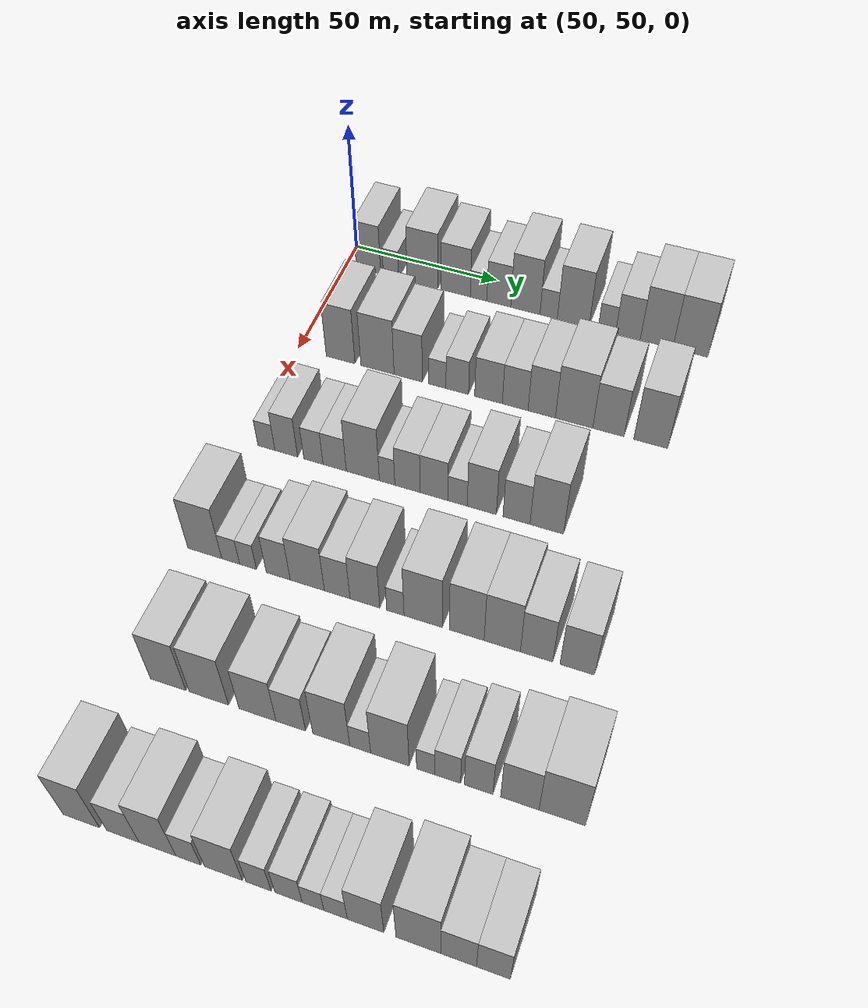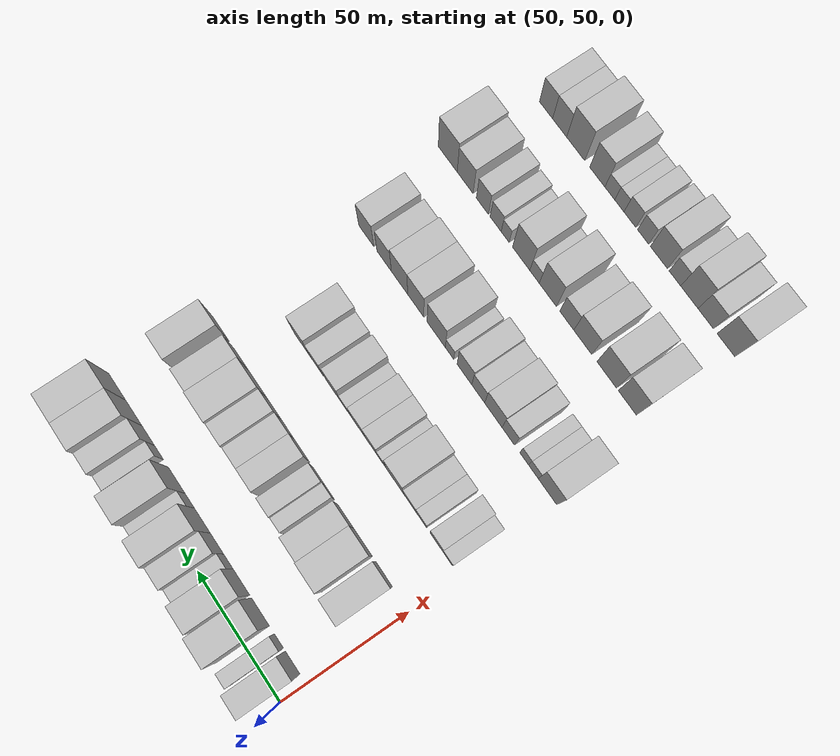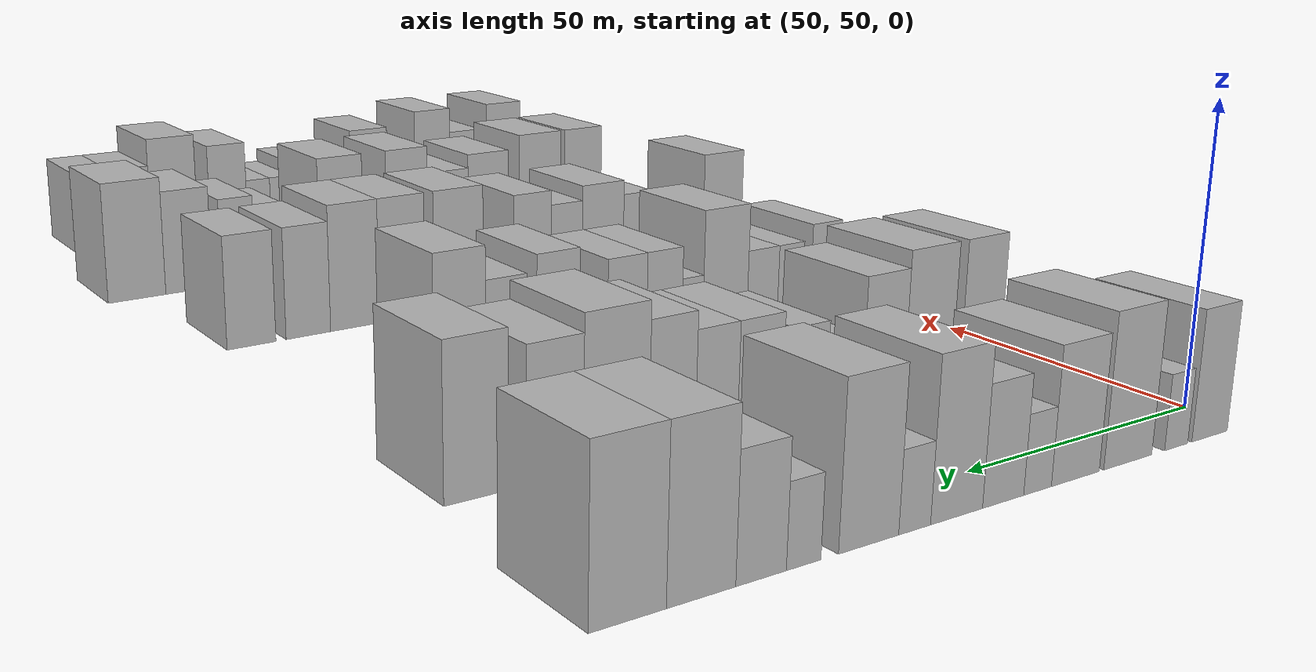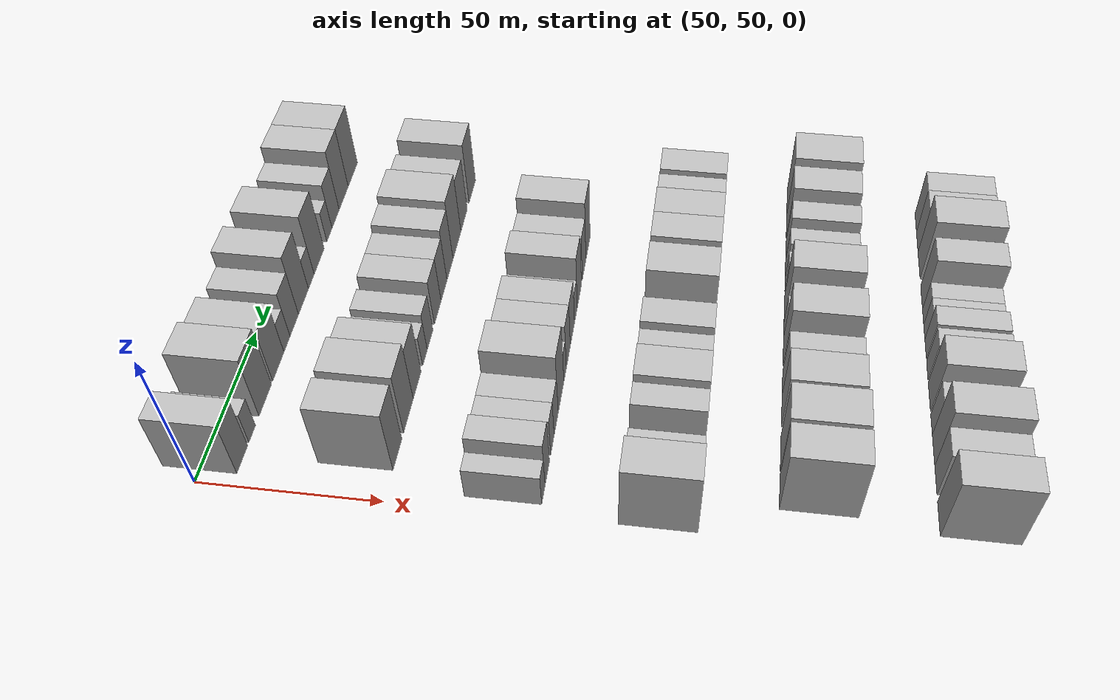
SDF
<sdf version="1.6">
 <world name="default">
  <model name="building_77">
   <static>1</static>
   <pose>50.0000 58.0316 0 0.000000 0.000000 0.000000</pose>
   <link name="link">
    <pose>0 0 10.50 0 0 0</pose>
    <collision name="collision"><geometry><box><size>20.0000 8.7165 21.0000</size></box></geometry></collision>
    <visual name="visual">
     <cast_shadows>0</cast_shadows>
     <geometry><box><size>20.0000 8.7165 21.0000</size></box></geometry>
     <material>
      <script>
       <uri>model://HANNAS_wall/materials/scripts</uri>
       <uri>model://HANNAS_wall/materials/textures</uri>
       <name>vrc/HANNAS_wall</name>
      </script>
     </material>
    </visual>
   </link>
  </model>
  <model name="building_78">
   <static>1</static>
   <pose>50.0000 66.1409 0 0.000000 0.000000 0.000000</pose>
   <link name="link">
    <pose>0 0 6.00 0 0 0</pose>
    <collision name="collision"><geometry><box><size>20.0000 5.5021 12.0000</size></box></geometry></collision>
    <visual name="visual">
     <cast_shadows>0</cast_shadows>
     <geometry><box><size>20.0000 5.5021 12.0000</size></box></geometry>
     <material>
      <script>
       <uri>model://HANNAS_wall/materials/scripts</uri>
       <uri>model://HANNAS_wall/materials/textures</uri>
       <name>vrc/HANNAS_wall</name>
      </script>
     </material>
    </visual>
   </link>
  </model>
  <model name="building_79">
   <static>1</static>
   <pose>50.0000 77.3324 0 0.000000 0.000000 0.000000</pose>
   <link name="link">
    <pose>0 0 12.00 0 0 0</pose>
    <collision name="collision"><geometry><box><size>20.0000 10.8809 24.0000</size></box></geometry></collision>
    <visual name="visual">
     <cast_shadows>0</cast_shadows>
     <geometry><box><size>20.0000 10.8809 24.0000</size></box></geometry>
     <material>
      <script>
       <uri>model://HANNAS_wall/materials/scripts</uri>
       <uri>model://HANNAS_wall/materials/textures</uri>
       <name>vrc/HANNAS_wall</name>
      </script>
     </material>
    </visual>
   </link>
  </model>
  <model name="building_80">
   <static>1</static>
   <pose>50.0000 88.9297 0 0.000000 0.000000 0.000000</pose>
   <link name="link">
    <pose>0 0 10.50 0 0 0</pose>
    <collision name="collision"><geometry><box><size>20.0000 10.3138 21.0000</size></box></geometry></collision>
    <visual name="visual">
     <cast_shadows>0</cast_shadows>
     <geometry><box><size>20.0000 10.3138 21.0000</size></box></geometry>
     <material>
      <script>
       <uri>model://HANNAS_wall/materials/scripts</uri>
       <uri>model://HANNAS_wall/materials/textures</uri>
       <name>vrc/HANNAS_wall</name>
      </script>
     </material>
    </visual>
   </link>
  </model>
  <model name="building_81">
   <static>1</static>
   <pose>50.0000 96.9542 0 0.000000 0.000000 0.000000</pose>
   <link name="link">
    <pose>0 0 6.00 0 0 0</pose>
    <collision name="collision"><geometry><box><size>20.0000 5.7352 12.0000</size></box></geometry></collision>
    <visual name="visual">
     <cast_shadows>0</cast_shadows>
     <geometry><box><size>20.0000 5.7352 12.0000</size></box></geometry>
     <material>
      <script>
       <uri>model://HANNAS_wall/materials/scripts</uri>
       <uri>model://HANNAS_wall/materials/textures</uri>
       <name>vrc/HANNAS_wall</name>
      </script>
     </material>
    </visual>
   </link>
  </model>
  <model name="building_82">
   <static>1</static>
   <pose>50.0000 103.9490 0 0.000000 0.000000 0.000000</pose>
   <link name="link">
    <pose>0 0 9.00 0 0 0</pose>
    <collision name="collision"><geometry><box><size>20.0000 8.2544 18.0000</size></box></geometry></collision>
    <visual name="visual">
     <cast_shadows>0</cast_shadows>
     <geometry><box><size>20.0000 8.2544 18.0000</size></box></geometry>
     <material>
      <script>
       <uri>model://HANNAS_wall/materials/scripts</uri>
       <uri>model://HANNAS_wall/materials/textures</uri>
       <name>vrc/HANNAS_wall</name>
      </script>
     </material>
    </visual>
   </link>
  </model>
  <model name="building_83">
   <static>1</static>
   <pose>50.0000 113.0676 0 0.000000 0.000000 0.000000</pose>
   <link name="link">
    <pose>0 0 12.00 0 0 0</pose>
    <collision name="collision"><geometry><box><size>20.0000 9.9829 24.0000</size></box></geometry></collision>
    <visual name="visual">
     <cast_shadows>0</cast_shadows>
     <geometry><box><size>20.0000 9.9829 24.0000</size></box></geometry>
     <material>
      <script>
       <uri>model://HANNAS_wall/materials/scripts</uri>
       <uri>model://HANNAS_wall/materials/textures</uri>
       <name>vrc/HANNAS_wall</name>
      </script>
     </material>
    </visual>
   </link>
  </model>
  <model name="building_84">
   <static>1</static>
   <pose>50.0000 121.0034 0 0.000000 0.000000 0.000000</pose>
   <link name="link">
    <pose>0 0 6.00 0 0 0</pose>
    <collision name="collision"><geometry><box><size>20.0000 5.8888 12.0000</size></box></geometry></collision>
    <visual name="visual">
     <cast_shadows>0</cast_shadows>
     <geometry><box><size>20.0000 5.8888 12.0000</size></box></geometry>
     <material>
      <script>
       <uri>model://HANNAS_wall/materials/scripts</uri>
       <uri>model://HANNAS_wall/materials/textures</uri>
       <name>vrc/HANNAS_wall</name>
      </script>
     </material>
    </visual>
   </link>
  </model>
  <model name="building_85">
   <static>1</static>
   <pose>50.0000 129.2816 0 0.000000 0.000000 0.000000</pose>
   <link name="link">
    <pose>0 0 12.00 0 0 0</pose>
    <collision name="collision"><geometry><box><size>20.0000 10.6676 24.0000</size></box></geometry></collision>
    <visual name="visual">
     <cast_shadows>0</cast_shadows>
     <geometry><box><size>20.0000 10.6676 24.0000</size></box></geometry>
     <material>
      <script>
       <uri>model://HANNAS_wall/materials/scripts</uri>
       <uri>model://HANNAS_wall/materials/textures</uri>
       <name>vrc/HANNAS_wall</name>
      </script>
     </material>
    </visual>
   </link>
  </model>
  <model name="building_86">
   <static>1</static>
   <pose>50.0000 140.5098 0 0.000000 0.000000 0.000000</pose>
   <link name="link">
    <pose>0 0 6.00 0 0 0</pose>
    <collision name="collision"><geometry><box><size>20.0000 5.7888 12.0000</size></box></geometry></collision>
    <visual name="visual">
     <cast_shadows>0</cast_shadows>
     <geometry><box><size>20.0000 5.7888 12.0000</size></box></geometry>
     <material>
      <script>
       <uri>model://HANNAS_wall/materials/scripts</uri>
       <uri>model://HANNAS_wall/materials/textures</uri>
       <name>vrc/HANNAS_wall</name>
      </script>
     </material>
    </visual>
   </link>
  </model>
  <model name="building_87">
   <static>1</static>
   <pose>50.0000 147.4850 0 0.000000 0.000000 0.000000</pose>
   <link name="link">
    <pose>0 0 9.00 0 0 0</pose>
    <collision name="collision"><geometry><box><size>20.0000 8.1616 18.0000</size></box></geometry></collision>
    <visual name="visual">
     <cast_shadows>0</cast_shadows>
     <geometry><box><size>20.0000 8.1616 18.0000</size></box></geometry>
     <material>
      <script>
       <uri>model://HANNAS_wall/materials/scripts</uri>
       <uri>model://HANNAS_wall/materials/textures</uri>
       <name>vrc/HANNAS_wall</name>
      </script>
     </material>
    </visual>
   </link>
  </model>
  <model name="building_88">
   <static>1</static>
   <pose>50.0000 156.8885 0 0.000000 0.000000 0.000000</pose>
   <link name="link">
    <pose>0 0 12.00 0 0 0</pose>
    <collision name="collision"><geometry><box><size>20.0000 10.6454 24.0000</size></box></geometry></collision>
    <visual name="visual">
     <cast_shadows>0</cast_shadows>
     <geometry><box><size>20.0000 10.6454 24.0000</size></box></geometry>
     <material>
      <script>
       <uri>model://HANNAS_wall/materials/scripts</uri>
       <uri>model://HANNAS_wall/materials/textures</uri>
       <name>vrc/HANNAS_wall</name>
      </script>
     </material>
    </visual>
   </link>
  </model>
  <model name="building_89">
   <static>1</static>
   <pose>50.0000 167.8699 0 0.000000 0.000000 0.000000</pose>
   <link name="link">
    <pose>0 0 12.00 0 0 0</pose>
    <collision name="collision"><geometry><box><size>20.0000 11.3176 24.0000</size></box></geometry></collision>
    <visual name="visual">
     <cast_shadows>0</cast_shadows>
     <geometry><box><size>20.0000 11.3176 24.0000</size></box></geometry>
     <material>
      <script>
       <uri>model://HANNAS_wall/materials/scripts</uri>
       <uri>model://HANNAS_wall/materials/textures</uri>
       <name>vrc/HANNAS_wall</name>
      </script>
     </material>
    </visual>
   </link>
  </model>
  <model name="building_209">
   <static>1</static>
   <pose>90.0000 64.3530 0 0.000000 0.000000 0.000000</pose>
   <link name="link">
    <pose>0 0 12.00 0 0 0</pose>
    <collision name="collision"><geometry><box><size>20.0000 9.8037 24.0000</size></box></geometry></collision>
    <visual name="visual">
     <cast_shadows>0</cast_shadows>
     <geometry><box><size>20.0000 9.8037 24.0000</size></box></geometry>
     <material>
      <script>
       <uri>model://HANNAS_wall/materials/scripts</uri>
       <uri>model://HANNAS_wall/materials/textures</uri>
       <name>vrc/HANNAS_wall</name>
      </script>
     </material>
    </visual>
   </link>
  </model>
  <model name="building_210">
   <static>1</static>
   <pose>90.0000 76.8482 0 0.000000 0.000000 0.000000</pose>
   <link name="link">
    <pose>0 0 12.00 0 0 0</pose>
    <collision name="collision"><geometry><box><size>20.0000 11.1867 24.0000</size></box></geometry></collision>
    <visual name="visual">
     <cast_shadows>0</cast_shadows>
     <geometry><box><size>20.0000 11.1867 24.0000</size></box></geometry>
     <material>
      <script>
       <uri>model://HANNAS_wall/materials/scripts</uri>
       <uri>model://HANNAS_wall/materials/textures</uri>
       <name>vrc/HANNAS_wall</name>
      </script>
     </material>
    </visual>
   </link>
  </model>
  <model name="building_211">
   <static>1</static>
   <pose>90.0000 87.1653 0 0.000000 0.000000 0.000000</pose>
   <link name="link">
    <pose>0 0 10.50 0 0 0</pose>
    <collision name="collision"><geometry><box><size>20.0000 9.4476 21.0000</size></box></geometry></collision>
    <visual name="visual">
     <cast_shadows>0</cast_shadows>
     <geometry><box><size>20.0000 9.4476 21.0000</size></box></geometry>
     <material>
      <script>
       <uri>model://HANNAS_wall/materials/scripts</uri>
       <uri>model://HANNAS_wall/materials/textures</uri>
       <name>vrc/HANNAS_wall</name>
      </script>
     </material>
    </visual>
   </link>
  </model>
  <model name="building_212">
   <static>1</static>
   <pose>90.0000 96.7720 0 0.000000 0.000000 0.000000</pose>
   <link name="link">
    <pose>0 0 6.00 0 0 0</pose>
    <collision name="collision"><geometry><box><size>20.0000 5.7657 12.0000</size></box></geometry></collision>
    <visual name="visual">
     <cast_shadows>0</cast_shadows>
     <geometry><box><size>20.0000 5.7657 12.0000</size></box></geometry>
     <material>
      <script>
       <uri>model://HANNAS_wall/materials/scripts</uri>
       <uri>model://HANNAS_wall/materials/textures</uri>
       <name>vrc/HANNAS_wall</name>
      </script>
     </material>
    </visual>
   </link>
  </model>
  <model name="building_213">
   <static>1</static>
   <pose>90.0000 103.3609 0 0.000000 0.000000 0.000000</pose>
   <link name="link">
    <pose>0 0 7.50 0 0 0</pose>
    <collision name="collision"><geometry><box><size>20.0000 7.4121 15.0000</size></box></geometry></collision>
    <visual name="visual">
     <cast_shadows>0</cast_shadows>
     <geometry><box><size>20.0000 7.4121 15.0000</size></box></geometry>
     <material>
      <script>
       <uri>model://HANNAS_wall/materials/scripts</uri>
       <uri>model://HANNAS_wall/materials/textures</uri>
       <name>vrc/HANNAS_wall</name>
      </script>
     </material>
    </visual>
   </link>
  </model>
  <model name="building_214">
   <static>1</static>
   <pose>90.0000 113.5467 0 0.000000 0.000000 0.000000</pose>
   <link name="link">
    <pose>0 0 9.00 0 0 0</pose>
    <collision name="collision"><geometry><box><size>20.0000 8.9595 18.0000</size></box></geometry></collision>
    <visual name="visual">
     <cast_shadows>0</cast_shadows>
     <geometry><box><size>20.0000 8.9595 18.0000</size></box></geometry>
     <material>
      <script>
       <uri>model://HANNAS_wall/materials/scripts</uri>
       <uri>model://HANNAS_wall/materials/textures</uri>
       <name>vrc/HANNAS_wall</name>
      </script>
     </material>
    </visual>
   </link>
  </model>
  <model name="building_215">
   <static>1</static>
   <pose>90.0000 122.1614 0 0.000000 0.000000 0.000000</pose>
   <link name="link">
    <pose>0 0 9.00 0 0 0</pose>
    <collision name="collision"><geometry><box><size>20.0000 8.2699 18.0000</size></box></geometry></collision>
    <visual name="visual">
     <cast_shadows>0</cast_shadows>
     <geometry><box><size>20.0000 8.2699 18.0000</size></box></geometry>
     <material>
      <script>
       <uri>model://HANNAS_wall/materials/scripts</uri>
       <uri>model://HANNAS_wall/materials/textures</uri>
       <name>vrc/HANNAS_wall</name>
      </script>
     </material>
    </visual>
   </link>
  </model>
  <model name="building_216">
   <static>1</static>
   <pose>90.0000 130.6529 0 0.000000 0.000000 0.000000</pose>
   <link name="link">
    <pose>0 0 10.50 0 0 0</pose>
    <collision name="collision"><geometry><box><size>20.0000 8.7132 21.0000</size></box></geometry></collision>
    <visual name="visual">
     <cast_shadows>0</cast_shadows>
     <geometry><box><size>20.0000 8.7132 21.0000</size></box></geometry>
     <material>
      <script>
       <uri>model://HANNAS_wall/materials/scripts</uri>
       <uri>model://HANNAS_wall/materials/textures</uri>
       <name>vrc/HANNAS_wall</name>
      </script>
     </material>
    </visual>
   </link>
  </model>
  <model name="building_217">
   <static>1</static>
   <pose>90.0000 140.8975 0 0.000000 0.000000 0.000000</pose>
   <link name="link">
    <pose>0 0 12.00 0 0 0</pose>
    <collision name="collision"><geometry><box><size>20.0000 11.7761 24.0000</size></box></geometry></collision>
    <visual name="visual">
     <cast_shadows>0</cast_shadows>
     <geometry><box><size>20.0000 11.7761 24.0000</size></box></geometry>
     <material>
      <script>
       <uri>model://HANNAS_wall/materials/scripts</uri>
       <uri>model://HANNAS_wall/materials/textures</uri>
       <name>vrc/HANNAS_wall</name>
      </script>
     </material>
    </visual>
   </link>
  </model>
  <model name="building_218">
   <static>1</static>
   <pose>90.0000 151.6613 0 0.000000 0.000000 0.000000</pose>
   <link name="link">
    <pose>0 0 10.50 0 0 0</pose>
    <collision name="collision"><geometry><box><size>20.0000 9.7514 21.0000</size></box></geometry></collision>
    <visual name="visual">
     <cast_shadows>0</cast_shadows>
     <geometry><box><size>20.0000 9.7514 21.0000</size></box></geometry>
     <material>
      <script>
       <uri>model://HANNAS_wall/materials/scripts</uri>
       <uri>model://HANNAS_wall/materials/textures</uri>
       <name>vrc/HANNAS_wall</name>
      </script>
     </material>
    </visual>
   </link>
  </model>
  <model name="building_219">
   <static>1</static>
   <pose>90.0000 164.7518 0 0.000000 0.000000 0.000000</pose>
   <link name="link">
    <pose>0 0 12.00 0 0 0</pose>
    <collision name="collision"><geometry><box><size>20.0000 10.4296 24.0000</size></box></geometry></collision>
    <visual name="visual">
     <cast_shadows>0</cast_shadows>
     <geometry><box><size>20.0000 10.4296 24.0000</size></box></geometry>
     <material>
      <script>
       <uri>model://HANNAS_wall/materials/scripts</uri>
       <uri>model://HANNAS_wall/materials/textures</uri>
       <name>vrc/HANNAS_wall</name>
      </script>
     </material>
    </visual>
   </link>
  </model>
  <model name="building_356">
   <static>1</static>
   <pose>130.0000 56.7798 0 0.000000 0.000000 0.000000</pose>
   <link name="link">
    <pose>0 0 6.00 0 0 0</pose>
    <collision name="collision"><geometry><box><size>20.0000 5.5539 12.0000</size></box></geometry></collision>
    <visual name="visual">
     <cast_shadows>0</cast_shadows>
     <geometry><box><size>20.0000 5.5539 12.0000</size></box></geometry>
     <material>
      <script>
       <uri>model://HANNAS_wall/materials/scripts</uri>
       <uri>model://HANNAS_wall/materials/textures</uri>
       <name>vrc/HANNAS_wall</name>
      </script>
     </material>
    </visual>
   </link>
  </model>
  <model name="building_357">
   <static>1</static>
   <pose>130.0000 63.2614 0 0.000000 0.000000 0.000000</pose>
   <link name="link">
    <pose>0 0 9.00 0 0 0</pose>
    <collision name="collision"><geometry><box><size>20.0000 7.4094 18.0000</size></box></geometry></collision>
    <visual name="visual">
     <cast_shadows>0</cast_shadows>
     <geometry><box><size>20.0000 7.4094 18.0000</size></box></geometry>
     <material>
      <script>
       <uri>model://HANNAS_wall/materials/scripts</uri>
       <uri>model://HANNAS_wall/materials/textures</uri>
       <name>vrc/HANNAS_wall</name>
      </script>
     </material>
    </visual>
   </link>
  </model>
  <model name="building_358">
   <static>1</static>
   <pose>130.0000 72.0494 0 0.000000 0.000000 0.000000</pose>
   <link name="link">
    <pose>0 0 7.50 0 0 0</pose>
    <collision name="collision"><geometry><box><size>20.0000 6.1666 15.0000</size></box></geometry></collision>
    <visual name="visual">
     <cast_shadows>0</cast_shadows>
     <geometry><box><size>20.0000 6.1666 15.0000</size></box></geometry>
     <material>
      <script>
       <uri>model://HANNAS_wall/materials/scripts</uri>
       <uri>model://HANNAS_wall/materials/textures</uri>
       <name>vrc/HANNAS_wall</name>
      </script>
     </material>
    </visual>
   </link>
  </model>
  <model name="building_359">
   <static>1</static>
   <pose>130.0000 78.8583 0 0.000000 0.000000 0.000000</pose>
   <link name="link">
    <pose>0 0 7.50 0 0 0</pose>
    <collision name="collision"><geometry><box><size>20.0000 7.4513 15.0000</size></box></geometry></collision>
    <visual name="visual">
     <cast_shadows>0</cast_shadows>
     <geometry><box><size>20.0000 7.4513 15.0000</size></box></geometry>
     <material>
      <script>
       <uri>model://HANNAS_wall/materials/scripts</uri>
       <uri>model://HANNAS_wall/materials/textures</uri>
       <name>vrc/HANNAS_wall</name>
      </script>
     </material>
    </visual>
   </link>
  </model>
  <model name="building_360">
   <static>1</static>
   <pose>130.0000 87.8145 0 0.000000 0.000000 0.000000</pose>
   <link name="link">
    <pose>0 0 12.00 0 0 0</pose>
    <collision name="collision"><geometry><box><size>20.0000 10.4611 24.0000</size></box></geometry></collision>
    <visual name="visual">
     <cast_shadows>0</cast_shadows>
     <geometry><box><size>20.0000 10.4611 24.0000</size></box></geometry>
     <material>
      <script>
       <uri>model://HANNAS_wall/materials/scripts</uri>
       <uri>model://HANNAS_wall/materials/textures</uri>
       <name>vrc/HANNAS_wall</name>
      </script>
     </material>
    </visual>
   </link>
  </model>
  <model name="building_361">
   <static>1</static>
   <pose>130.0000 95.4640 0 0.000000 0.000000 0.000000</pose>
   <link name="link">
    <pose>0 0 6.00 0 0 0</pose>
    <collision name="collision"><geometry><box><size>20.0000 4.8380 12.0000</size></box></geometry></collision>
    <visual name="visual">
     <cast_shadows>0</cast_shadows>
     <geometry><box><size>20.0000 4.8380 12.0000</size></box></geometry>
     <material>
      <script>
       <uri>model://HANNAS_wall/materials/scripts</uri>
       <uri>model://HANNAS_wall/materials/textures</uri>
       <name>vrc/HANNAS_wall</name>
      </script>
     </material>
    </visual>
   </link>
  </model>
  <model name="building_362">
   <static>1</static>
   <pose>130.0000 101.8373 0 0.000000 0.000000 0.000000</pose>
   <link name="link">
    <pose>0 0 9.00 0 0 0</pose>
    <collision name="collision"><geometry><box><size>20.0000 7.9087 18.0000</size></box></geometry></collision>
    <visual name="visual">
     <cast_shadows>0</cast_shadows>
     <geometry><box><size>20.0000 7.9087 18.0000</size></box></geometry>
     <material>
      <script>
       <uri>model://HANNAS_wall/materials/scripts</uri>
       <uri>model://HANNAS_wall/materials/textures</uri>
       <name>vrc/HANNAS_wall</name>
      </script>
     </material>
    </visual>
   </link>
  </model>
  <model name="building_363">
   <static>1</static>
   <pose>130.0000 110.0591 0 0.000000 0.000000 0.000000</pose>
   <link name="link">
    <pose>0 0 9.00 0 0 0</pose>
    <collision name="collision"><geometry><box><size>20.0000 8.5350 18.0000</size></box></geometry></collision>
    <visual name="visual">
     <cast_shadows>0</cast_shadows>
     <geometry><box><size>20.0000 8.5350 18.0000</size></box></geometry>
     <material>
      <script>
       <uri>model://HANNAS_wall/materials/scripts</uri>
       <uri>model://HANNAS_wall/materials/textures</uri>
       <name>vrc/HANNAS_wall</name>
      </script>
     </material>
    </visual>
   </link>
  </model>
  <model name="building_364">
   <static>1</static>
   <pose>130.0000 117.2825 0 0.000000 0.000000 0.000000</pose>
   <link name="link">
    <pose>0 0 6.00 0 0 0</pose>
    <collision name="collision"><geometry><box><size>20.0000 5.9117 12.0000</size></box></geometry></collision>
    <visual name="visual">
     <cast_shadows>0</cast_shadows>
     <geometry><box><size>20.0000 5.9117 12.0000</size></box></geometry>
     <material>
      <script>
       <uri>model://HANNAS_wall/materials/scripts</uri>
       <uri>model://HANNAS_wall/materials/textures</uri>
       <name>vrc/HANNAS_wall</name>
      </script>
     </material>
    </visual>
   </link>
  </model>
  <model name="building_365">
   <static>1</static>
   <pose>130.0000 124.6548 0 0.000000 0.000000 0.000000</pose>
   <link name="link">
    <pose>0 0 10.50 0 0 0</pose>
    <collision name="collision"><geometry><box><size>20.0000 8.8328 21.0000</size></box></geometry></collision>
    <visual name="visual">
     <cast_shadows>0</cast_shadows>
     <geometry><box><size>20.0000 8.8328 21.0000</size></box></geometry>
     <material>
      <script>
       <uri>model://HANNAS_wall/materials/scripts</uri>
       <uri>model://HANNAS_wall/materials/textures</uri>
       <name>vrc/HANNAS_wall</name>
      </script>
     </material>
    </visual>
   </link>
  </model>
  <model name="building_366">
   <static>1</static>
   <pose>130.0000 135.1244 0 0.000000 0.000000 0.000000</pose>
   <link name="link">
    <pose>0 0 9.00 0 0 0</pose>
    <collision name="collision"><geometry><box><size>20.0000 8.1064 18.0000</size></box></geometry></collision>
    <visual name="visual">
     <cast_shadows>0</cast_shadows>
     <geometry><box><size>20.0000 8.1064 18.0000</size></box></geometry>
     <material>
      <script>
       <uri>model://HANNAS_wall/materials/scripts</uri>
       <uri>model://HANNAS_wall/materials/textures</uri>
       <name>vrc/HANNAS_wall</name>
      </script>
     </material>
    </visual>
   </link>
  </model>
  <model name="building_367">
   <static>1</static>
   <pose>130.0000 144.1565 0 0.000000 0.000000 0.000000</pose>
   <link name="link">
    <pose>0 0 12.00 0 0 0</pose>
    <collision name="collision"><geometry><box><size>20.0000 9.9578 24.0000</size></box></geometry></collision>
    <visual name="visual">
     <cast_shadows>0</cast_shadows>
     <geometry><box><size>20.0000 9.9578 24.0000</size></box></geometry>
     <material>
      <script>
       <uri>model://HANNAS_wall/materials/scripts</uri>
       <uri>model://HANNAS_wall/materials/textures</uri>
       <name>vrc/HANNAS_wall</name>
      </script>
     </material>
    </visual>
   </link>
  </model>
  <model name="building_487">
   <static>1</static>
   <pose>170.0000 55.9464 0 0.000000 0.000000 0.000000</pose>
   <link name="link">
    <pose>0 0 12.00 0 0 0</pose>
    <collision name="collision"><geometry><box><size>20.0000 10.5192 24.0000</size></box></geometry></collision>
    <visual name="visual">
     <cast_shadows>0</cast_shadows>
     <geometry><box><size>20.0000 10.5192 24.0000</size></box></geometry>
     <material>
      <script>
       <uri>model://HANNAS_wall/materials/scripts</uri>
       <uri>model://HANNAS_wall/materials/textures</uri>
       <name>vrc/HANNAS_wall</name>
      </script>
     </material>
    </visual>
   </link>
  </model>
  <model name="building_488">
   <static>1</static>
   <pose>170.0000 63.9727 0 0.000000 0.000000 0.000000</pose>
   <link name="link">
    <pose>0 0 6.00 0 0 0</pose>
    <collision name="collision"><geometry><box><size>20.0000 5.5335 12.0000</size></box></geometry></collision>
    <visual name="visual">
     <cast_shadows>0</cast_shadows>
     <geometry><box><size>20.0000 5.5335 12.0000</size></box></geometry>
     <material>
      <script>
       <uri>model://HANNAS_wall/materials/scripts</uri>
       <uri>model://HANNAS_wall/materials/textures</uri>
       <name>vrc/HANNAS_wall</name>
      </script>
     </material>
    </visual>
   </link>
  </model>
  <model name="building_489">
   <static>1</static>
   <pose>170.0000 69.2903 0 0.000000 0.000000 0.000000</pose>
   <link name="link">
    <pose>0 0 6.00 0 0 0</pose>
    <collision name="collision"><geometry><box><size>20.0000 5.1016 12.0000</size></box></geometry></collision>
    <visual name="visual">
     <cast_shadows>0</cast_shadows>
     <geometry><box><size>20.0000 5.1016 12.0000</size></box></geometry>
     <material>
      <script>
       <uri>model://HANNAS_wall/materials/scripts</uri>
       <uri>model://HANNAS_wall/materials/textures</uri>
       <name>vrc/HANNAS_wall</name>
      </script>
     </material>
    </visual>
   </link>
  </model>
  <model name="building_490">
   <static>1</static>
   <pose>170.0000 78.4756 0 0.000000 0.000000 0.000000</pose>
   <link name="link">
    <pose>0 0 9.00 0 0 0</pose>
    <collision name="collision"><geometry><box><size>20.0000 7.2692 18.0000</size></box></geometry></collision>
    <visual name="visual">
     <cast_shadows>0</cast_shadows>
     <geometry><box><size>20.0000 7.2692 18.0000</size></box></geometry>
     <material>
      <script>
       <uri>model://HANNAS_wall/materials/scripts</uri>
       <uri>model://HANNAS_wall/materials/textures</uri>
       <name>vrc/HANNAS_wall</name>
      </script>
     </material>
    </visual>
   </link>
  </model>
  <model name="building_491">
   <static>1</static>
   <pose>170.0000 87.2288 0 0.000000 0.000000 0.000000</pose>
   <link name="link">
    <pose>0 0 10.50 0 0 0</pose>
    <collision name="collision"><geometry><box><size>20.0000 10.2372 21.0000</size></box></geometry></collision>
    <visual name="visual">
     <cast_shadows>0</cast_shadows>
     <geometry><box><size>20.0000 10.2372 21.0000</size></box></geometry>
     <material>
      <script>
       <uri>model://HANNAS_wall/materials/scripts</uri>
       <uri>model://HANNAS_wall/materials/textures</uri>
       <name>vrc/HANNAS_wall</name>
      </script>
     </material>
    </visual>
   </link>
  </model>
  <model name="building_492">
   <static>1</static>
   <pose>170.0000 96.1492 0 0.000000 0.000000 0.000000</pose>
   <link name="link">
    <pose>0 0 9.00 0 0 0</pose>
    <collision name="collision"><geometry><box><size>20.0000 7.6035 18.0000</size></box></geometry></collision>
    <visual name="visual">
     <cast_shadows>0</cast_shadows>
     <geometry><box><size>20.0000 7.6035 18.0000</size></box></geometry>
     <material>
      <script>
       <uri>model://HANNAS_wall/materials/scripts</uri>
       <uri>model://HANNAS_wall/materials/textures</uri>
       <name>vrc/HANNAS_wall</name>
      </script>
     </material>
    </visual>
   </link>
  </model>
  <model name="building_493">
   <static>1</static>
   <pose>170.0000 104.3206 0 0.000000 0.000000 0.000000</pose>
   <link name="link">
    <pose>0 0 10.50 0 0 0</pose>
    <collision name="collision"><geometry><box><size>20.0000 8.7393 21.0000</size></box></geometry></collision>
    <visual name="visual">
     <cast_shadows>0</cast_shadows>
     <geometry><box><size>20.0000 8.7393 21.0000</size></box></geometry>
     <material>
      <script>
       <uri>model://HANNAS_wall/materials/scripts</uri>
       <uri>model://HANNAS_wall/materials/textures</uri>
       <name>vrc/HANNAS_wall</name>
      </script>
     </material>
    </visual>
   </link>
  </model>
  <model name="building_494">
   <static>1</static>
   <pose>170.0000 113.2113 0 0.000000 0.000000 0.000000</pose>
   <link name="link">
    <pose>0 0 6.00 0 0 0</pose>
    <collision name="collision"><geometry><box><size>20.0000 5.0421 12.0000</size></box></geometry></collision>
    <visual name="visual">
     <cast_shadows>0</cast_shadows>
     <geometry><box><size>20.0000 5.0421 12.0000</size></box></geometry>
     <material>
      <script>
       <uri>model://HANNAS_wall/materials/scripts</uri>
       <uri>model://HANNAS_wall/materials/textures</uri>
       <name>vrc/HANNAS_wall</name>
      </script>
     </material>
    </visual>
   </link>
  </model>
  <model name="building_495">
   <static>1</static>
   <pose>170.0000 121.2402 0 0.000000 0.000000 0.000000</pose>
   <link name="link">
    <pose>0 0 12.00 0 0 0</pose>
    <collision name="collision"><geometry><box><size>20.0000 11.0156 24.0000</size></box></geometry></collision>
    <visual name="visual">
     <cast_shadows>0</cast_shadows>
     <geometry><box><size>20.0000 11.0156 24.0000</size></box></geometry>
     <material>
      <script>
       <uri>model://HANNAS_wall/materials/scripts</uri>
       <uri>model://HANNAS_wall/materials/textures</uri>
       <name>vrc/HANNAS_wall</name>
      </script>
     </material>
    </visual>
   </link>
  </model>
  <model name="building_496">
   <static>1</static>
   <pose>170.0000 133.6766 0 0.000000 0.000000 0.000000</pose>
   <link name="link">
    <pose>0 0 12.00 0 0 0</pose>
    <collision name="collision"><geometry><box><size>20.0000 9.8572 24.0000</size></box></geometry></collision>
    <visual name="visual">
     <cast_shadows>0</cast_shadows>
     <geometry><box><size>20.0000 9.8572 24.0000</size></box></geometry>
     <material>
      <script>
       <uri>model://HANNAS_wall/materials/scripts</uri>
       <uri>model://HANNAS_wall/materials/textures</uri>
       <name>vrc/HANNAS_wall</name>
      </script>
     </material>
    </visual>
   </link>
  </model>
  <model name="building_497">
   <static>1</static>
   <pose>170.0000 143.6765 0 0.000000 0.000000 0.000000</pose>
   <link name="link">
    <pose>0 0 12.00 0 0 0</pose>
    <collision name="collision"><geometry><box><size>20.0000 10.1427 24.0000</size></box></geometry></collision>
    <visual name="visual">
     <cast_shadows>0</cast_shadows>
     <geometry><box><size>20.0000 10.1427 24.0000</size></box></geometry>
     <material>
      <script>
       <uri>model://HANNAS_wall/materials/scripts</uri>
       <uri>model://HANNAS_wall/materials/textures</uri>
       <name>vrc/HANNAS_wall</name>
      </script>
     </material>
    </visual>
   </link>
  </model>
  <model name="building_498">
   <static>1</static>
   <pose>170.0000 153.2298 0 0.000000 0.000000 0.000000</pose>
   <link name="link">
    <pose>0 0 10.50 0 0 0</pose>
    <collision name="collision"><geometry><box><size>20.0000 8.9638 21.0000</size></box></geometry></collision>
    <visual name="visual">
     <cast_shadows>0</cast_shadows>
     <geometry><box><size>20.0000 8.9638 21.0000</size></box></geometry>
     <material>
      <script>
       <uri>model://HANNAS_wall/materials/scripts</uri>
       <uri>model://HANNAS_wall/materials/textures</uri>
       <name>vrc/HANNAS_wall</name>
      </script>
     </material>
    </visual>
   </link>
  </model>
  <model name="building_499">
   <static>1</static>
   <pose>170.0000 164.4326 0 0.000000 0.000000 0.000000</pose>
   <link name="link">
    <pose>0 0 10.50 0 0 0</pose>
    <collision name="collision"><geometry><box><size>20.0000 9.4420 21.0000</size></box></geometry></collision>
    <visual name="visual">
     <cast_shadows>0</cast_shadows>
     <geometry><box><size>20.0000 9.4420 21.0000</size></box></geometry>
     <material>
      <script>
       <uri>model://HANNAS_wall/materials/scripts</uri>
       <uri>model://HANNAS_wall/materials/textures</uri>
       <name>vrc/HANNAS_wall</name>
      </script>
     </material>
    </visual>
   </link>
  </model>
  <model name="building_621">
   <static>1</static>
   <pose>210.0000 64.8940 0 0.000000 0.000000 0.000000</pose>
   <link name="link">
    <pose>0 0 12.00 0 0 0</pose>
    <collision name="collision"><geometry><box><size>20.0000 10.2998 24.0000</size></box></geometry></collision>
    <visual name="visual">
     <cast_shadows>0</cast_shadows>
     <geometry><box><size>20.0000 10.2998 24.0000</size></box></geometry>
     <material>
      <script>
       <uri>model://HANNAS_wall/materials/scripts</uri>
       <uri>model://HANNAS_wall/materials/textures</uri>
       <name>vrc/HANNAS_wall</name>
      </script>
     </material>
    </visual>
   </link>
  </model>
  <model name="building_622">
   <static>1</static>
   <pose>210.0000 76.6599 0 0.000000 0.000000 0.000000</pose>
   <link name="link">
    <pose>0 0 12.00 0 0 0</pose>
    <collision name="collision"><geometry><box><size>20.0000 11.2321 24.0000</size></box></geometry></collision>
    <visual name="visual">
     <cast_shadows>0</cast_shadows>
     <geometry><box><size>20.0000 11.2321 24.0000</size></box></geometry>
     <material>
      <script>
       <uri>model://HANNAS_wall/materials/scripts</uri>
       <uri>model://HANNAS_wall/materials/textures</uri>
       <name>vrc/HANNAS_wall</name>
      </script>
     </material>
    </visual>
   </link>
  </model>
  <model name="building_623">
   <static>1</static>
   <pose>210.0000 90.4739 0 0.000000 0.000000 0.000000</pose>
   <link name="link">
    <pose>0 0 10.50 0 0 0</pose>
    <collision name="collision"><geometry><box><size>20.0000 10.3957 21.0000</size></box></geometry></collision>
    <visual name="visual">
     <cast_shadows>0</cast_shadows>
     <geometry><box><size>20.0000 10.3957 21.0000</size></box></geometry>
     <material>
      <script>
       <uri>model://HANNAS_wall/materials/scripts</uri>
       <uri>model://HANNAS_wall/materials/textures</uri>
       <name>vrc/HANNAS_wall</name>
      </script>
     </material>
    </visual>
   </link>
  </model>
  <model name="building_624">
   <static>1</static>
   <pose>210.0000 99.7960 0 0.000000 0.000000 0.000000</pose>
   <link name="link">
    <pose>0 0 9.00 0 0 0</pose>
    <collision name="collision"><geometry><box><size>20.0000 8.2485 18.0000</size></box></geometry></collision>
    <visual name="visual">
     <cast_shadows>0</cast_shadows>
     <geometry><box><size>20.0000 8.2485 18.0000</size></box></geometry>
     <material>
      <script>
       <uri>model://HANNAS_wall/materials/scripts</uri>
       <uri>model://HANNAS_wall/materials/textures</uri>
       <name>vrc/HANNAS_wall</name>
      </script>
     </material>
    </visual>
   </link>
  </model>
  <model name="building_625">
   <static>1</static>
   <pose>210.0000 110.9911 0 0.000000 0.000000 0.000000</pose>
   <link name="link">
    <pose>0 0 12.00 0 0 0</pose>
    <collision name="collision"><geometry><box><size>20.0000 10.1418 24.0000</size></box></geometry></collision>
    <visual name="visual">
     <cast_shadows>0</cast_shadows>
     <geometry><box><size>20.0000 10.1418 24.0000</size></box></geometry>
     <material>
      <script>
       <uri>model://HANNAS_wall/materials/scripts</uri>
       <uri>model://HANNAS_wall/materials/textures</uri>
       <name>vrc/HANNAS_wall</name>
      </script>
     </material>
    </visual>
   </link>
  </model>
  <model name="building_626">
   <static>1</static>
   <pose>210.0000 118.8920 0 0.000000 0.000000 0.000000</pose>
   <link name="link">
    <pose>0 0 6.00 0 0 0</pose>
    <collision name="collision"><geometry><box><size>20.0000 5.6600 12.0000</size></box></geometry></collision>
    <visual name="visual">
     <cast_shadows>0</cast_shadows>
     <geometry><box><size>20.0000 5.6600 12.0000</size></box></geometry>
     <material>
      <script>
       <uri>model://HANNAS_wall/materials/scripts</uri>
       <uri>model://HANNAS_wall/materials/textures</uri>
       <name>vrc/HANNAS_wall</name>
      </script>
     </material>
    </visual>
   </link>
  </model>
  <model name="building_627">
   <static>1</static>
   <pose>210.0000 126.8946 0 0.000000 0.000000 0.000000</pose>
   <link name="link">
    <pose>0 0 12.00 0 0 0</pose>
    <collision name="collision"><geometry><box><size>20.0000 10.3450 24.0000</size></box></geometry></collision>
    <visual name="visual">
     <cast_shadows>0</cast_shadows>
     <geometry><box><size>20.0000 10.3450 24.0000</size></box></geometry>
     <material>
      <script>
       <uri>model://HANNAS_wall/materials/scripts</uri>
       <uri>model://HANNAS_wall/materials/textures</uri>
       <name>vrc/HANNAS_wall</name>
      </script>
     </material>
    </visual>
   </link>
  </model>
  <model name="building_628">
   <static>1</static>
   <pose>210.0000 136.5074 0 0.000000 0.000000 0.000000</pose>
   <link name="link">
    <pose>0 0 6.00 0 0 0</pose>
    <collision name="collision"><geometry><box><size>20.0000 4.8807 12.0000</size></box></geometry></collision>
    <visual name="visual">
     <cast_shadows>0</cast_shadows>
     <geometry><box><size>20.0000 4.8807 12.0000</size></box></geometry>
     <material>
      <script>
       <uri>model://HANNAS_wall/materials/scripts</uri>
       <uri>model://HANNAS_wall/materials/textures</uri>
       <name>vrc/HANNAS_wall</name>
      </script>
     </material>
    </visual>
   </link>
  </model>
  <model name="building_629">
   <static>1</static>
   <pose>210.0000 142.3212 0 0.000000 0.000000 0.000000</pose>
   <link name="link">
    <pose>0 0 7.50 0 0 0</pose>
    <collision name="collision"><geometry><box><size>20.0000 6.7469 15.0000</size></box></geometry></collision>
    <visual name="visual">
     <cast_shadows>0</cast_shadows>
     <geometry><box><size>20.0000 6.7469 15.0000</size></box></geometry>
     <material>
      <script>
       <uri>model://HANNAS_wall/materials/scripts</uri>
       <uri>model://HANNAS_wall/materials/textures</uri>
       <name>vrc/HANNAS_wall</name>
      </script>
     </material>
    </visual>
   </link>
  </model>
  <model name="building_630">
   <static>1</static>
   <pose>210.0000 150.4062 0 0.000000 0.000000 0.000000</pose>
   <link name="link">
    <pose>0 0 9.00 0 0 0</pose>
    <collision name="collision"><geometry><box><size>20.0000 7.4232 18.0000</size></box></geometry></collision>
    <visual name="visual">
     <cast_shadows>0</cast_shadows>
     <geometry><box><size>20.0000 7.4232 18.0000</size></box></geometry>
     <material>
      <script>
       <uri>model://HANNAS_wall/materials/scripts</uri>
       <uri>model://HANNAS_wall/materials/textures</uri>
       <name>vrc/HANNAS_wall</name>
      </script>
     </material>
    </visual>
   </link>
  </model>
  <model name="building_631">
   <static>1</static>
   <pose>210.0000 161.0541 0 0.000000 0.000000 0.000000</pose>
   <link name="link">
    <pose>0 0 10.50 0 0 0</pose>
    <collision name="collision"><geometry><box><size>20.0000 9.8726 21.0000</size></box></geometry></collision>
    <visual name="visual">
     <cast_shadows>0</cast_shadows>
     <geometry><box><size>20.0000 9.8726 21.0000</size></box></geometry>
     <material>
      <script>
       <uri>model://HANNAS_wall/materials/scripts</uri>
       <uri>model://HANNAS_wall/materials/textures</uri>
       <name>vrc/HANNAS_wall</name>
      </script>
     </material>
    </visual>
   </link>
  </model>
  <model name="building_632">
   <static>1</static>
   <pose>210.0000 171.8866 0 0.000000 0.000000 0.000000</pose>
   <link name="link">
    <pose>0 0 12.00 0 0 0</pose>
    <collision name="collision"><geometry><box><size>20.0000 11.7925 24.0000</size></box></geometry></collision>
    <visual name="visual">
     <cast_shadows>0</cast_shadows>
     <geometry><box><size>20.0000 11.7925 24.0000</size></box></geometry>
     <material>
      <script>
       <uri>model://HANNAS_wall/materials/scripts</uri>
       <uri>model://HANNAS_wall/materials/textures</uri>
       <name>vrc/HANNAS_wall</name>
      </script>
     </material>
    </visual>
   </link>
  </model>
  <model name="building_754">
   <static>1</static>
   <pose>250.0000 61.7944 0 0.000000 0.000000 0.000000</pose>
   <link name="link">
    <pose>0 0 12.00 0 0 0</pose>
    <collision name="collision"><geometry><box><size>20.0000 9.9688 24.0000</size></box></geometry></collision>
    <visual name="visual">
     <cast_shadows>0</cast_shadows>
     <geometry><box><size>20.0000 9.9688 24.0000</size></box></geometry>
     <material>
      <script>
       <uri>model://HANNAS_wall/materials/scripts</uri>
       <uri>model://HANNAS_wall/materials/textures</uri>
       <name>vrc/HANNAS_wall</name>
      </script>
     </material>
    </visual>
   </link>
  </model>
  <model name="building_755">
   <static>1</static>
   <pose>250.0000 73.1634 0 0.000000 0.000000 0.000000</pose>
   <link name="link">
    <pose>0 0 9.00 0 0 0</pose>
    <collision name="collision"><geometry><box><size>20.0000 8.7692 18.0000</size></box></geometry></collision>
    <visual name="visual">
     <cast_shadows>0</cast_shadows>
     <geometry><box><size>20.0000 8.7692 18.0000</size></box></geometry>
     <material>
      <script>
       <uri>model://HANNAS_wall/materials/scripts</uri>
       <uri>model://HANNAS_wall/materials/textures</uri>
       <name>vrc/HANNAS_wall</name>
      </script>
     </material>
    </visual>
   </link>
  </model>
  <model name="building_756">
   <static>1</static>
   <pose>250.0000 82.4760 0 0.000000 0.000000 0.000000</pose>
   <link name="link">
    <pose>0 0 12.00 0 0 0</pose>
    <collision name="collision"><geometry><box><size>20.0000 9.8561 24.0000</size></box></geometry></collision>
    <visual name="visual">
     <cast_shadows>0</cast_shadows>
     <geometry><box><size>20.0000 9.8561 24.0000</size></box></geometry>
     <material>
      <script>
       <uri>model://HANNAS_wall/materials/scripts</uri>
       <uri>model://HANNAS_wall/materials/textures</uri>
       <name>vrc/HANNAS_wall</name>
      </script>
     </material>
    </visual>
   </link>
  </model>
  <model name="building_757">
   <static>1</static>
   <pose>250.0000 90.7050 0 0.000000 0.000000 0.000000</pose>
   <link name="link">
    <pose>0 0 7.50 0 0 0</pose>
    <collision name="collision"><geometry><box><size>20.0000 6.6018 15.0000</size></box></geometry></collision>
    <visual name="visual">
     <cast_shadows>0</cast_shadows>
     <geometry><box><size>20.0000 6.6018 15.0000</size></box></geometry>
     <material>
      <script>
       <uri>model://HANNAS_wall/materials/scripts</uri>
       <uri>model://HANNAS_wall/materials/textures</uri>
       <name>vrc/HANNAS_wall</name>
      </script>
     </material>
    </visual>
   </link>
  </model>
  <model name="building_758">
   <static>1</static>
   <pose>250.0000 99.9311 0 0.000000 0.000000 0.000000</pose>
   <link name="link">
    <pose>0 0 10.50 0 0 0</pose>
    <collision name="collision"><geometry><box><size>20.0000 9.8504 21.0000</size></box></geometry></collision>
    <visual name="visual">
     <cast_shadows>0</cast_shadows>
     <geometry><box><size>20.0000 9.8504 21.0000</size></box></geometry>
     <material>
      <script>
       <uri>model://HANNAS_wall/materials/scripts</uri>
       <uri>model://HANNAS_wall/materials/textures</uri>
       <name>vrc/HANNAS_wall</name>
      </script>
     </material>
    </visual>
   </link>
  </model>
  <model name="building_759">
   <static>1</static>
   <pose>250.0000 109.0939 0 0.000000 0.000000 0.000000</pose>
   <link name="link">
    <pose>0 0 7.50 0 0 0</pose>
    <collision name="collision"><geometry><box><size>20.0000 6.4753 15.0000</size></box></geometry></collision>
    <visual name="visual">
     <cast_shadows>0</cast_shadows>
     <geometry><box><size>20.0000 6.4753 15.0000</size></box></geometry>
     <material>
      <script>
       <uri>model://HANNAS_wall/materials/scripts</uri>
       <uri>model://HANNAS_wall/materials/textures</uri>
       <name>vrc/HANNAS_wall</name>
      </script>
     </material>
    </visual>
   </link>
  </model>
  <model name="building_760">
   <static>1</static>
   <pose>250.0000 116.8205 0 0.000000 0.000000 0.000000</pose>
   <link name="link">
    <pose>0 0 7.50 0 0 0</pose>
    <collision name="collision"><geometry><box><size>20.0000 6.9779 15.0000</size></box></geometry></collision>
    <visual name="visual">
     <cast_shadows>0</cast_shadows>
     <geometry><box><size>20.0000 6.9779 15.0000</size></box></geometry>
     <material>
      <script>
       <uri>model://HANNAS_wall/materials/scripts</uri>
       <uri>model://HANNAS_wall/materials/textures</uri>
       <name>vrc/HANNAS_wall</name>
      </script>
     </material>
    </visual>
   </link>
  </model>
  <model name="building_761">
   <static>1</static>
   <pose>250.0000 123.0429 0 0.000000 0.000000 0.000000</pose>
   <link name="link">
    <pose>0 0 6.00 0 0 0</pose>
    <collision name="collision"><geometry><box><size>20.0000 5.4667 12.0000</size></box></geometry></collision>
    <visual name="visual">
     <cast_shadows>0</cast_shadows>
     <geometry><box><size>20.0000 5.4667 12.0000</size></box></geometry>
     <material>
      <script>
       <uri>model://HANNAS_wall/materials/scripts</uri>
       <uri>model://HANNAS_wall/materials/textures</uri>
       <name>vrc/HANNAS_wall</name>
      </script>
     </material>
    </visual>
   </link>
  </model>
  <model name="building_762">
   <static>1</static>
   <pose>250.0000 128.7028 0 0.000000 0.000000 0.000000</pose>
   <link name="link">
    <pose>0 0 6.00 0 0 0</pose>
    <collision name="collision"><geometry><box><size>20.0000 5.8531 12.0000</size></box></geometry></collision>
    <visual name="visual">
     <cast_shadows>0</cast_shadows>
     <geometry><box><size>20.0000 5.8531 12.0000</size></box></geometry>
     <material>
      <script>
       <uri>model://HANNAS_wall/materials/scripts</uri>
       <uri>model://HANNAS_wall/materials/textures</uri>
       <name>vrc/HANNAS_wall</name>
      </script>
     </material>
    </visual>
   </link>
  </model>
  <model name="building_763">
   <static>1</static>
   <pose>250.0000 136.1778 0 0.000000 0.000000 0.000000</pose>
   <link name="link">
    <pose>0 0 10.50 0 0 0</pose>
    <collision name="collision"><geometry><box><size>20.0000 9.0969 21.0000</size></box></geometry></collision>
    <visual name="visual">
     <cast_shadows>0</cast_shadows>
     <geometry><box><size>20.0000 9.0969 21.0000</size></box></geometry>
     <material>
      <script>
       <uri>model://HANNAS_wall/materials/scripts</uri>
       <uri>model://HANNAS_wall/materials/textures</uri>
       <name>vrc/HANNAS_wall</name>
      </script>
     </material>
    </visual>
   </link>
  </model>
  <model name="building_764">
   <static>1</static>
   <pose>250.0000 149.2020 0 0.000000 0.000000 0.000000</pose>
   <link name="link">
    <pose>0 0 12.00 0 0 0</pose>
    <collision name="collision"><geometry><box><size>20.0000 10.9514 24.0000</size></box></geometry></collision>
    <visual name="visual">
     <cast_shadows>0</cast_shadows>
     <geometry><box><size>20.0000 10.9514 24.0000</size></box></geometry>
     <material>
      <script>
       <uri>model://HANNAS_wall/materials/scripts</uri>
       <uri>model://HANNAS_wall/materials/textures</uri>
       <name>vrc/HANNAS_wall</name>
      </script>
     </material>
    </visual>
   </link>
  </model>
  <model name="building_765">
   <static>1</static>
   <pose>250.0000 158.9559 0 0.000000 0.000000 0.000000</pose>
   <link name="link">
    <pose>0 0 9.00 0 0 0</pose>
    <collision name="collision"><geometry><box><size>20.0000 8.5564 18.0000</size></box></geometry></collision>
    <visual name="visual">
     <cast_shadows>0</cast_shadows>
     <geometry><box><size>20.0000 8.5564 18.0000</size></box></geometry>
     <material>
      <script>
       <uri>model://HANNAS_wall/materials/scripts</uri>
       <uri>model://HANNAS_wall/materials/textures</uri>
       <name>vrc/HANNAS_wall</name>
      </script>
     </material>
    </visual>
   </link>
  </model>
  <model name="building_766">
   <static>1</static>
   <pose>250.0000 167.2690 0 0.000000 0.000000 0.000000</pose>
   <link name="link">
    <pose>0 0 9.00 0 0 0</pose>
    <collision name="collision"><geometry><box><size>20.0000 8.0699 18.0000</size></box></geometry></collision>
    <visual name="visual">
     <cast_shadows>0</cast_shadows>
     <geometry><box><size>20.0000 8.0699 18.0000</size></box></geometry>
     <material>
      <script>
       <uri>model://HANNAS_wall/materials/scripts</uri>
       <uri>model://HANNAS_wall/materials/textures</uri>
       <name>vrc/HANNAS_wall</name>
      </script>
     </material>
    </visual>
   </link>
  </model>
 </world>
</sdf>
